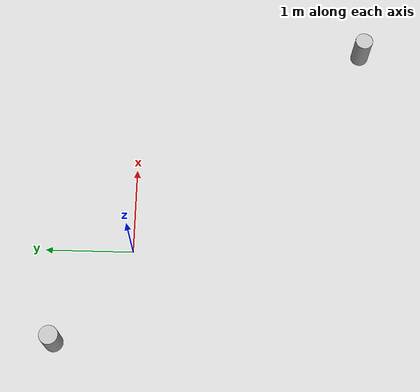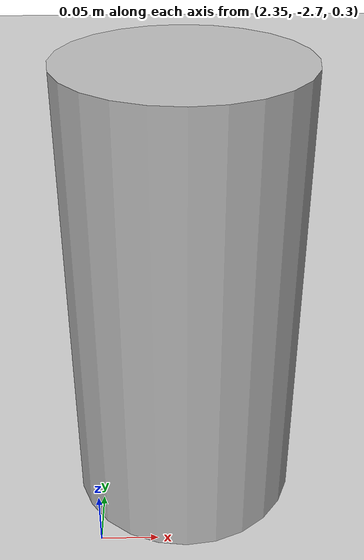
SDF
<sdf version="1.6">
 <world name="default">
  <light name="sun" type="directional">
   <pose>0 0 10 0 -0 0</pose>
   <diffuse>0.8 0.8 0.8 1</diffuse>
   <specular>0.1 0.1 0.1 1</specular>
   <attenuation>
    <range>1000</range>
    <constant>0.9</constant>
    <linear>0.01</linear>
    <quadratic>0.001</quadratic>
   </attenuation>
   <direction>-0.5 0.5 -1</direction>
  </light>
  <model name="ground_plane">
   <static>1</static>
   <link name="link">
    <collision name="collision">
     <geometry><plane><normal>0 0 1</normal><size>100 100</size></plane></geometry>
     <surface><friction><ode><mu>100</mu><mu2>50</mu2></ode></friction></surface>
    </collision>
    <visual name="visual">
     <cast_shadows>0</cast_shadows>
     <geometry><plane><normal>0 0 1</normal><size>100 100</size></plane></geometry>
     <material>
      <script><uri>file://media/materials/scripts/gazebo.material</uri><name>Gazebo/Grey</name></script>
     </material>
    </visual>
   </link>
  </model>
  <physics name="default_physics" default="0" type="ode">
   <max_step_size>0.01</max_step_size>
   <real_time_factor>1</real_time_factor>
   <real_time_update_rate>100</real_time_update_rate>
  </physics>
  <gravity>0 0 -9.8</gravity>
  <magnetic_field>6e-06 2.3e-05 -4.2e-05</magnetic_field>
  <atmosphere type="adiabatic"/>
  <scene><ambient>0.4 0.4 0.4 1</ambient><background>0.7 0.7 0.7 1</background><shadows>1</shadows></scene>
  <spherical_coordinates>
   <surface_model>EARTH_WGS84</surface_model>
   <latitude_deg>0</latitude_deg>
   <longitude_deg>0</longitude_deg>
   <elevation>0</elevation>
   <heading_deg>0</heading_deg>
  </spherical_coordinates>
  <model name="cyl_ob_model">
   <link name="link">
    <pose>0.210027 -0.349984 0.499984 0 -0 0</pose>
    <inertial>
     <mass>1.0</mass>
     <inertia><ixx>1</ixx><ixy>0</ixy><ixz>0</ixz><iyy>1</iyy><iyz>0</iyz><izz>1</izz></inertia>
    </inertial>
    <visual name="visual">
     <geometry><cylinder><radius>0.1</radius><length>0.4</length></cylinder></geometry>
     <material><shader type="pixel"/></material>
    </visual>
    <collision name="collision">
     <geometry><cylinder><radius>0.1</radius><length>0.4</length></cylinder></geometry>
     <surface>
      <friction>
       <ode><mu>1</mu><mu2>1</mu2><fdir1>0 0 0</fdir1><slip1>0</slip1><slip2>0</slip2></ode>
       <torsional>
        <coefficient>1</coefficient>
        <patch_radius>0</patch_radius>
        <surface_radius>0</surface_radius>
        <use_patch_radius>1</use_patch_radius>
        <ode><slip>0</slip></ode>
       </torsional>
      </friction>
      <bounce><restitution_coefficient>0</restitution_coefficient><threshold>1e+06</threshold></bounce>
      <contact>
       <collide_without_contact>0</collide_without_contact>
       <collide_without_contact_bitmask>1</collide_without_contact_bitmask>
       <collide_bitmask>1</collide_bitmask>
       <ode>
        <soft_cfm>0</soft_cfm>
        <soft_erp>0.2</soft_erp>
        <kp>1e+13</kp>
        <kd>1</kd>
        <max_vel>0.01</max_vel>
        <min_depth>0</min_depth>
       </ode>
       <bullet>
        <split_impulse>1</split_impulse>
        <split_impulse_penetration_threshold>-0.01</split_impulse_penetration_threshold>
        <soft_cfm>0</soft_cfm>
        <soft_erp>0.2</soft_erp>
        <kp>1e+13</kp>
        <kd>1</kd>
       </bullet>
      </contact>
     </surface>
    </collision>
   </link>
   <static>0</static>
   <pose>2.2157 -2.25896 2e-06 -2.5e-05 6.7e-05 -0.001036</pose>
  </model>
  <model name="cyl_ob_model_0">
   <link name="link">
    <pose>0.210027 -0.349984 0.499984 0 -0 0</pose>
    <inertial>
     <mass>1.0</mass>
     <inertia><ixx>1</ixx><ixy>0</ixy><ixz>0</ixz><iyy>1</iyy><iyz>0</iyz><izz>1</izz></inertia>
    </inertial>
    <visual name="visual">
     <geometry><cylinder><radius>0.1</radius><length>0.4</length></cylinder></geometry>
     <material><shader type="pixel"/></material>
    </visual>
    <collision name="collision">
     <geometry><cylinder><radius>0.1</radius><length>0.4</length></cylinder></geometry>
     <surface>
      <friction>
       <ode><mu>1</mu><mu2>1</mu2><fdir1>0 0 0</fdir1><slip1>0</slip1><slip2>0</slip2></ode>
       <torsional>
        <coefficient>1</coefficient>
        <patch_radius>0</patch_radius>
        <surface_radius>0</surface_radius>
        <use_patch_radius>1</use_patch_radius>
        <ode><slip>0</slip></ode>
       </torsional>
      </friction>
      <bounce><restitution_coefficient>0</restitution_coefficient><threshold>1e+06</threshold></bounce>
      <contact>
       <collide_without_contact>0</collide_without_contact>
       <collide_without_contact_bitmask>1</collide_without_contact_bitmask>
       <collide_bitmask>1</collide_bitmask>
       <ode>
        <soft_cfm>0</soft_cfm>
        <soft_erp>0.2</soft_erp>
        <kp>1e+13</kp>
        <kd>1</kd>
        <max_vel>0.01</max_vel>
        <min_depth>0</min_depth>
       </ode>
       <bullet>
        <split_impulse>1</split_impulse>
        <split_impulse_penetration_threshold>-0.01</split_impulse_penetration_threshold>
        <soft_cfm>0</soft_cfm>
        <soft_erp>0.2</soft_erp>
        <kp>1e+13</kp>
        <kd>1</kd>
       </bullet>
      </contact>
     </surface>
    </collision>
   </link>
   <static>0</static>
   <pose>-1.32904 1.11239 -0.001132 -1.1e-05 -0.000238 -0.002663</pose>
  </model>
 </world>
</sdf>
